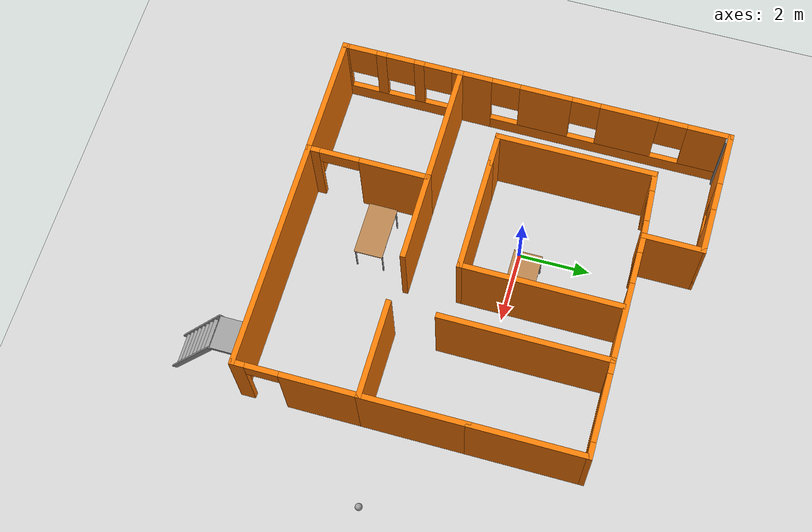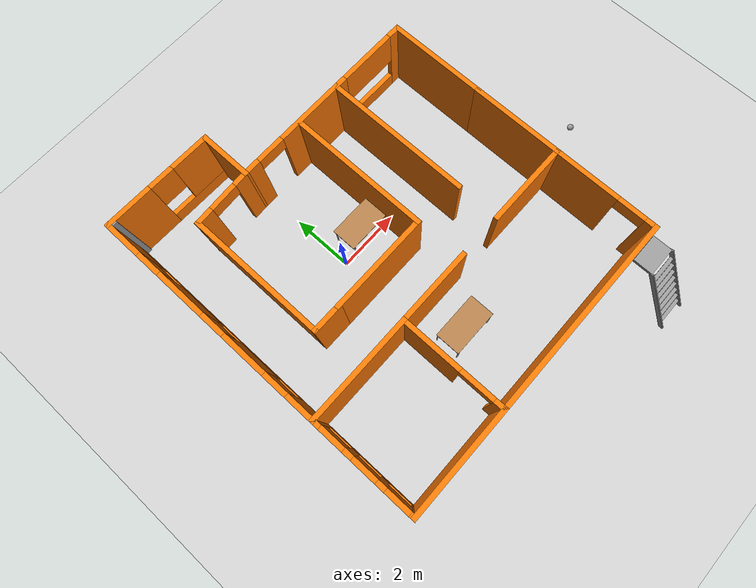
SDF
<sdf version="1.5">
 <world name="default">
  <plugin name="welcome" filename="libwelcome.so"/>
  <light name="sun" type="directional">
   <pose>0 0 10 0 -0 0</pose>
   <diffuse>0.8 0.8 0.8 1</diffuse>
   <specular>0.2 0.2 0.2 1</specular>
   <attenuation>
    <range>1000</range>
    <constant>0.9</constant>
    <linear>0.01</linear>
    <quadratic>0.001</quadratic>
   </attenuation>
   <direction>-0.5 0.1 -0.9</direction>
   <spot><inner_angle>0</inner_angle><outer_angle>0</outer_angle><falloff>0</falloff></spot>
  </light>
  <model name="ground_plane">
   <static>1</static>
   <link name="link">
    <collision name="collision">
     <geometry><plane><normal>0 0 1</normal><size>100 100</size></plane></geometry>
     <surface>
      <contact><collide_bitmask>65535</collide_bitmask></contact>
      <friction><ode><mu>100</mu><mu2>50</mu2></ode></friction>
     </surface>
    </collision>
    <visual name="visual">
     <cast_shadows>0</cast_shadows>
     <geometry><plane><normal>0 0 1</normal><size>100 100</size></plane></geometry>
     <material>
      <script><uri>file://media/materials/scripts/gazebo.material</uri><name>Gazebo/Grey</name></script>
     </material>
    </visual>
   </link>
  </model>
  <gravity>0 0 -9.8</gravity>
  <magnetic_field>6e-06 2.3e-05 -4.2e-05</magnetic_field>
  <atmosphere type="adiabatic"/>
  <physics type="ode">
   <max_step_size>0.001</max_step_size>
   <real_time_factor>1</real_time_factor>
   <real_time_update_rate>1000</real_time_update_rate>
  </physics>
  <scene><ambient>0.4 0.4 0.4 1</ambient><background>0.7 0.7 0.7 1</background><shadows>1</shadows></scene>
  <spherical_coordinates>
   <surface_model>EARTH_WGS84</surface_model>
   <latitude_deg>0</latitude_deg>
   <longitude_deg>0</longitude_deg>
   <elevation>0</elevation>
   <heading_deg>0</heading_deg>
  </spherical_coordinates>
  <model name="apbuilding">
   <pose>1.01179 -0.64167 0 0 -0 0</pose>
   <link name="Wall_26">
    <collision name="Wall_26_Collision">
     <geometry><box><size>3.5 0.15 2.5</size></box></geometry>
     <pose>0 0 1.25 0 -0 0</pose>
    </collision>
    <visual name="Wall_26_Visual">
     <pose>0 0 1.25 0 -0 0</pose>
     <geometry><box><size>3.5 0.15 2.5</size></box></geometry>
     <material>
      <script><uri>file://media/materials/scripts/gazebo.material</uri><name>Gazebo/Grey</name></script>
      <ambient>0.996078 0.47451 0.0196078 1</ambient>
     </material>
     <meta><layer>0</layer></meta>
    </visual>
    <pose>-3.17447 -5.47553 0 0 -0 0</pose>
   </link>
   <link name="Wall_27">
    <pose>-1.49947 -3.80053 0 0 -0 1.5708</pose>
    <visual name="Wall_27_Visual_0">
     <pose>-1.55093 0 1.25 0 -0 0</pose>
     <geometry><box><size>0.398136 0.15 2.5</size></box></geometry>
     <material>
      <script><uri>file://media/materials/scripts/gazebo.material</uri><name>Gazebo/Grey</name></script>
      <ambient>0.996078 0.47451 0.0196078 1</ambient>
     </material>
     <meta><layer>0</layer></meta>
    </visual>
    <collision name="Wall_27_Collision_0">
     <geometry><box><size>0.398136 0.15 2.5</size></box></geometry>
     <pose>-1.55093 0 1.25 0 -0 0</pose>
    </collision>
    <visual name="Wall_27_Visual_1">
     <pose>0.754868 0 1.25 0 -0 0</pose>
     <geometry><box><size>1.99026 0.15 2.5</size></box></geometry>
     <material>
      <script><uri>file://media/materials/scripts/gazebo.material</uri><name>Gazebo/Grey</name></script>
      <ambient>0.996078 0.47451 0.0196078 1</ambient>
     </material>
     <meta><layer>0</layer></meta>
    </visual>
    <collision name="Wall_27_Collision_1">
     <geometry><box><size>1.99026 0.15 2.5</size></box></geometry>
     <pose>0.754868 0 1.25 0 -0 0</pose>
    </collision>
    <visual name="Wall_27_Visual_2">
     <pose>-0.796064 0 2.25 0 -0 0</pose>
     <geometry><box><size>1.1116 0.15 0.5</size></box></geometry>
     <material>
      <script><uri>file://media/materials/scripts/gazebo.material</uri><name>Gazebo/Grey</name></script>
      <ambient>0.996078 0.47451 0.0196078 1</ambient>
     </material>
     <meta><layer>0</layer></meta>
    </visual>
    <collision name="Wall_27_Collision_2">
     <geometry><box><size>1.1116 0.15 0.5</size></box></geometry>
     <pose>-0.796064 0 2.25 0 -0 0</pose>
    </collision>
   </link>
   <link name="Wall_28">
    <collision name="Wall_28_Collision">
     <geometry><box><size>3.5 0.15 2.5</size></box></geometry>
     <pose>0 0 1.25 0 -0 0</pose>
    </collision>
    <visual name="Wall_28_Visual">
     <pose>0 0 1.25 0 -0 0</pose>
     <geometry><box><size>3.5 0.15 2.5</size></box></geometry>
     <material>
      <script><uri>file://media/materials/scripts/gazebo.material</uri><name>Gazebo/Grey</name></script>
      <ambient>0.996078 0.47451 0.0196078 1</ambient>
     </material>
     <meta><layer>0</layer></meta>
    </visual>
    <pose>-3.17447 -2.12553 0 0 -0 3.14159</pose>
   </link>
   <link name="Wall_29">
    <pose>-4.84947 -3.80053 0 0 -0 -1.5708</pose>
    <visual name="Wall_29_Visual_0">
     <pose>-1.59167 0 1.25 0 -0 0</pose>
     <geometry><box><size>0.316661 0.15 2.5</size></box></geometry>
     <material>
      <script><uri>file://media/materials/scripts/gazebo.material</uri><name>Gazebo/Grey</name></script>
      <ambient>0.996078 0.47451 0.0196078 1</ambient>
     </material>
     <meta><layer>0</layer></meta>
    </visual>
    <collision name="Wall_29_Collision_0">
     <geometry><box><size>0.316661 0.15 2.5</size></box></geometry>
     <pose>-1.59167 0 1.25 0 -0 0</pose>
    </collision>
    <visual name="Wall_29_Visual_1">
     <pose>0.158331 0 0.25 0 -0 0</pose>
     <geometry><box><size>3.18334 0.15 0.5</size></box></geometry>
     <material>
      <script><uri>file://media/materials/scripts/gazebo.material</uri><name>Gazebo/Grey</name></script>
      <ambient>0.996078 0.47451 0.0196078 1</ambient>
     </material>
     <meta><layer>0</layer></meta>
    </visual>
    <collision name="Wall_29_Collision_1">
     <geometry><box><size>3.18334 0.15 0.5</size></box></geometry>
     <pose>0.158331 0 0.25 0 -0 0</pose>
    </collision>
    <visual name="Wall_29_Visual_2">
     <pose>-0.488034 0 1.5 0 -0 0</pose>
     <geometry><box><size>0.290608 0.15 2</size></box></geometry>
     <material>
      <script><uri>file://media/materials/scripts/gazebo.material</uri><name>Gazebo/Grey</name></script>
      <ambient>0.996078 0.47451 0.0196078 1</ambient>
     </material>
     <meta><layer>0</layer></meta>
    </visual>
    <collision name="Wall_29_Collision_2">
     <geometry><box><size>0.290608 0.15 2</size></box></geometry>
     <pose>-0.488034 0 1.5 0 -0 0</pose>
    </collision>
    <visual name="Wall_29_Visual_3">
     <pose>0.602574 0 1.5 0 -0 0</pose>
     <geometry><box><size>0.290609 0.15 2</size></box></geometry>
     <material>
      <script><uri>file://media/materials/scripts/gazebo.material</uri><name>Gazebo/Grey</name></script>
      <ambient>0.996078 0.47451 0.0196078 1</ambient>
     </material>
     <meta><layer>0</layer></meta>
    </visual>
    <collision name="Wall_29_Collision_3">
     <geometry><box><size>0.290609 0.15 2</size></box></geometry>
     <pose>0.602574 0 1.5 0 -0 0</pose>
    </collision>
    <visual name="Wall_29_Visual_4">
     <pose>1.64894 0 1.5 0 -0 0</pose>
     <geometry><box><size>0.202122 0.15 2</size></box></geometry>
     <material>
      <script><uri>file://media/materials/scripts/gazebo.material</uri><name>Gazebo/Grey</name></script>
      <ambient>0.996078 0.47451 0.0196078 1</ambient>
     </material>
     <meta><layer>0</layer></meta>
    </visual>
    <collision name="Wall_29_Collision_4">
     <geometry><box><size>0.202122 0.15 2</size></box></geometry>
     <pose>1.64894 0 1.5 0 -0 0</pose>
    </collision>
    <visual name="Wall_29_Visual_5">
     <pose>-1.03334 0 1.9 0 -0 0</pose>
     <geometry><box><size>0.8 0.15 1.2</size></box></geometry>
     <material>
      <script><uri>file://media/materials/scripts/gazebo.material</uri><name>Gazebo/Grey</name></script>
      <ambient>0.996078 0.47451 0.0196078 1</ambient>
     </material>
     <meta><layer>0</layer></meta>
    </visual>
    <collision name="Wall_29_Collision_5">
     <geometry><box><size>0.8 0.15 1.2</size></box></geometry>
     <pose>-1.03334 0 1.9 0 -0 0</pose>
    </collision>
    <visual name="Wall_29_Visual_6">
     <pose>0.05727 0 1.9 0 -0 0</pose>
     <geometry><box><size>0.8 0.15 1.2</size></box></geometry>
     <material>
      <script><uri>file://media/materials/scripts/gazebo.material</uri><name>Gazebo/Grey</name></script>
      <ambient>0.996078 0.47451 0.0196078 1</ambient>
     </material>
     <meta><layer>0</layer></meta>
    </visual>
    <collision name="Wall_29_Collision_6">
     <geometry><box><size>0.8 0.15 1.2</size></box></geometry>
     <pose>0.05727 0 1.9 0 -0 0</pose>
    </collision>
    <visual name="Wall_29_Visual_7">
     <pose>1.14788 0 1.9 0 -0 0</pose>
     <geometry><box><size>0.8 0.15 1.2</size></box></geometry>
     <material>
      <script><uri>file://media/materials/scripts/gazebo.material</uri><name>Gazebo/Grey</name></script>
      <ambient>0.996078 0.47451 0.0196078 1</ambient>
     </material>
     <meta><layer>0</layer></meta>
    </visual>
    <collision name="Wall_29_Collision_7">
     <geometry><box><size>0.8 0.15 1.2</size></box></geometry>
     <pose>1.14788 0 1.9 0 -0 0</pose>
    </collision>
   </link>
   <link name="Wall_31">
    <collision name="Wall_31_Collision">
     <geometry><box><size>6.5 0.15 2.5</size></box></geometry>
     <pose>0 0 1.25 0 -0 0</pose>
    </collision>
    <visual name="Wall_31_Visual">
     <pose>0 0 1.25 0 -0 0</pose>
     <geometry><box><size>6.5 0.15 2.5</size></box></geometry>
     <material>
      <script><uri>file://media/materials/scripts/gazebo.material</uri><name>Gazebo/Grey</name></script>
      <ambient>0.996078 0.47451 0.0196078 1</ambient>
     </material>
     <meta><layer>0</layer></meta>
    </visual>
    <pose>1.67553 -5.47553 0 0 -0 0</pose>
   </link>
   <link name="Wall_32">
    <pose>4.85053 -3.80053 0 0 -0 1.5708</pose>
    <visual name="Wall_32_Visual_0">
     <pose>-1.54576 0 1.25 0 -0 0</pose>
     <geometry><box><size>0.408486 0.15 2.5</size></box></geometry>
     <material>
      <script><uri>file://media/materials/scripts/gazebo.material</uri><name>Gazebo/Grey</name></script>
      <ambient>0.996078 0.47451 0.0196078 1</ambient>
     </material>
     <meta><layer>0</layer></meta>
    </visual>
    <collision name="Wall_32_Collision_0">
     <geometry><box><size>0.408486 0.15 2.5</size></box></geometry>
     <pose>-1.54576 0 1.25 0 -0 0</pose>
    </collision>
    <visual name="Wall_32_Visual_1">
     <pose>0.654243 0 1.25 0 -0 0</pose>
     <geometry><box><size>2.19151 0.15 2.5</size></box></geometry>
     <material>
      <script><uri>file://media/materials/scripts/gazebo.material</uri><name>Gazebo/Grey</name></script>
      <ambient>0.996078 0.47451 0.0196078 1</ambient>
     </material>
     <meta><layer>0</layer></meta>
    </visual>
    <collision name="Wall_32_Collision_1">
     <geometry><box><size>2.19151 0.15 2.5</size></box></geometry>
     <pose>0.654243 0 1.25 0 -0 0</pose>
    </collision>
    <visual name="Wall_32_Visual_2">
     <pose>-0.891514 0 2.25 0 -0 0</pose>
     <geometry><box><size>0.9 0.15 0.5</size></box></geometry>
     <material>
      <script><uri>file://media/materials/scripts/gazebo.material</uri><name>Gazebo/Grey</name></script>
      <ambient>0.996078 0.47451 0.0196078 1</ambient>
     </material>
     <meta><layer>0</layer></meta>
    </visual>
    <collision name="Wall_32_Collision_2">
     <geometry><box><size>0.9 0.15 0.5</size></box></geometry>
     <pose>-0.891514 0 2.25 0 -0 0</pose>
    </collision>
   </link>
   <link name="Wall_33">
    <collision name="Wall_33_Collision">
     <geometry><box><size>2.75 0.15 2.5</size></box></geometry>
     <pose>0 0 1.25 0 -0 0</pose>
    </collision>
    <visual name="Wall_33_Visual">
     <pose>0 0 1.25 0 -0 0</pose>
     <geometry><box><size>2.75 0.15 2.5</size></box></geometry>
     <material>
      <script><uri>file://media/materials/scripts/gazebo.material</uri><name>Gazebo/Grey</name></script>
      <ambient>0.996078 0.47451 0.0196078 1</ambient>
     </material>
     <meta><layer>0</layer></meta>
    </visual>
    <pose>3.55053 -2.12553 0 0 -0 3.14159</pose>
   </link>
   <link name="Wall_35">
    <collision name="Wall_35_Collision">
     <geometry><box><size>2.5 0.15 2.5</size></box></geometry>
     <pose>0 0 1.25 0 -0 0</pose>
    </collision>
    <visual name="Wall_35_Visual">
     <pose>0 0 1.25 0 -0 0</pose>
     <geometry><box><size>2.5 0.15 2.5</size></box></geometry>
     <material>
      <script><uri>file://media/materials/scripts/gazebo.material</uri><name>Gazebo/Grey</name></script>
      <ambient>0.996078 0.47451 0.0196078 1</ambient>
     </material>
     <meta><layer>0</layer></meta>
    </visual>
    <pose>-0.324468 -2.12553 0 0 -0 0</pose>
   </link>
   <link name="Wall_37">
    <collision name="Wall_37_Collision">
     <geometry><box><size>3 0.15 2.5</size></box></geometry>
     <pose>0 0 1.25 0 -0 0</pose>
    </collision>
    <visual name="Wall_37_Visual">
     <pose>0 0 1.25 0 -0 0</pose>
     <geometry><box><size>3 0.15 2.5</size></box></geometry>
     <material>
      <script><uri>file://media/materials/scripts/gazebo.material</uri><name>Gazebo/Grey</name></script>
      <ambient>0.996078 0.47451 0.0196078 1</ambient>
     </material>
     <meta><layer>0</layer></meta>
    </visual>
    <pose>4.85053 -0.700532 0 0 -0 1.5708</pose>
   </link>
   <link name="Wall_39">
    <collision name="Wall_39_Collision">
     <geometry><box><size>3.25 0.15 2.5</size></box></geometry>
     <pose>0 0 1.25 0 -0 0</pose>
    </collision>
    <visual name="Wall_39_Visual">
     <pose>0 0 1.25 0 -0 0</pose>
     <geometry><box><size>3.25 0.15 2.5</size></box></geometry>
     <material>
      <script><uri>file://media/materials/scripts/gazebo.material</uri><name>Gazebo/Grey</name></script>
      <ambient>0.996078 0.47451 0.0196078 1</ambient>
     </material>
     <meta><layer>0</layer></meta>
    </visual>
    <pose>4.85053 2.27447 0 0 -0 1.5708</pose>
   </link>
   <link name="Wall_40">
    <pose>3.55053 3.82447 0 0 -0 3.14159</pose>
    <visual name="Wall_40_Visual_0">
     <pose>-1.14595 0 1.25 0 -0 0</pose>
     <geometry><box><size>0.458097 0.15 2.5</size></box></geometry>
     <material>
      <script><uri>file://media/materials/scripts/gazebo.material</uri><name>Gazebo/Grey</name></script>
      <ambient>0.996078 0.47451 0.0196078 1</ambient>
     </material>
     <meta><layer>0</layer></meta>
    </visual>
    <collision name="Wall_40_Collision_0">
     <geometry><box><size>0.458097 0.15 2.5</size></box></geometry>
     <pose>-1.14595 0 1.25 0 -0 0</pose>
    </collision>
    <visual name="Wall_40_Visual_1">
     <pose>0.229048 0 0.25 0 -0 0</pose>
     <geometry><box><size>2.2919 0.15 0.5</size></box></geometry>
     <material>
      <script><uri>file://media/materials/scripts/gazebo.material</uri><name>Gazebo/Grey</name></script>
      <ambient>0.996078 0.47451 0.0196078 1</ambient>
     </material>
     <meta><layer>0</layer></meta>
    </visual>
    <collision name="Wall_40_Collision_1">
     <geometry><box><size>2.2919 0.15 0.5</size></box></geometry>
     <pose>0.229048 0 0.25 0 -0 0</pose>
    </collision>
    <visual name="Wall_40_Visual_2">
     <pose>1.15507 0 1.5 0 -0 0</pose>
     <geometry><box><size>0.439864 0.15 2</size></box></geometry>
     <material>
      <script><uri>file://media/materials/scripts/gazebo.material</uri><name>Gazebo/Grey</name></script>
      <ambient>0.996078 0.47451 0.0196078 1</ambient>
     </material>
     <meta><layer>0</layer></meta>
    </visual>
    <collision name="Wall_40_Collision_2">
     <geometry><box><size>0.439864 0.15 2</size></box></geometry>
     <pose>1.15507 0 1.5 0 -0 0</pose>
    </collision>
    <visual name="Wall_40_Visual_3">
     <pose>0.009116 0 1.9 0 -0 0</pose>
     <geometry><box><size>1.85204 0.15 1.2</size></box></geometry>
     <material>
      <script><uri>file://media/materials/scripts/gazebo.material</uri><name>Gazebo/Grey</name></script>
      <ambient>0.996078 0.47451 0.0196078 1</ambient>
     </material>
     <meta><layer>0</layer></meta>
    </visual>
    <collision name="Wall_40_Collision_3">
     <geometry><box><size>1.85204 0.15 1.2</size></box></geometry>
     <pose>0.009116 0 1.9 0 -0 0</pose>
    </collision>
   </link>
   <link name="Wall_41">
    <collision name="Wall_41_Collision">
     <geometry><box><size>4.75 0.15 2.5</size></box></geometry>
     <pose>0 0 1.25 0 -0 0</pose>
    </collision>
    <visual name="Wall_41_Visual">
     <pose>0 0 1.25 0 -0 0</pose>
     <geometry><box><size>4.75 0.15 2.5</size></box></geometry>
     <material>
      <script><uri>file://media/materials/scripts/gazebo.material</uri><name>Gazebo/Grey</name></script>
      <ambient>0.996078 0.47451 0.0196078 1</ambient>
     </material>
     <meta><layer>0</layer></meta>
    </visual>
    <pose>2.25053 1.52447 0 0 -0 -1.5708</pose>
   </link>
   <link name="Wall_43">
    <pose>0.450532 3.82447 0 0 -0 3.14159</pose>
    <visual name="Wall_43_Visual_0">
     <pose>-0.739437 0 1.25 0 -0 0</pose>
     <geometry><box><size>2.27113 0.15 2.5</size></box></geometry>
     <material>
      <script><uri>file://media/materials/scripts/gazebo.material</uri><name>Gazebo/Grey</name></script>
      <ambient>0.996078 0.47451 0.0196078 1</ambient>
     </material>
     <meta><layer>0</layer></meta>
    </visual>
    <collision name="Wall_43_Collision_0">
     <geometry><box><size>2.27113 0.15 2.5</size></box></geometry>
     <pose>-0.739437 0 1.25 0 -0 0</pose>
    </collision>
    <visual name="Wall_43_Visual_1">
     <pose>1.58556 0 1.25 0 -0 0</pose>
     <geometry><box><size>0.578874 0.15 2.5</size></box></geometry>
     <material>
      <script><uri>file://media/materials/scripts/gazebo.material</uri><name>Gazebo/Grey</name></script>
      <ambient>0.996078 0.47451 0.0196078 1</ambient>
     </material>
     <meta><layer>0</layer></meta>
    </visual>
    <collision name="Wall_43_Collision_1">
     <geometry><box><size>0.578874 0.15 2.5</size></box></geometry>
     <pose>1.58556 0 1.25 0 -0 0</pose>
    </collision>
    <visual name="Wall_43_Visual_2">
     <pose>0.846126 0 2.25 0 -0 0</pose>
     <geometry><box><size>0.9 0.15 0.5</size></box></geometry>
     <material>
      <script><uri>file://media/materials/scripts/gazebo.material</uri><name>Gazebo/Grey</name></script>
      <ambient>0.996078 0.47451 0.0196078 1</ambient>
     </material>
     <meta><layer>0</layer></meta>
    </visual>
    <collision name="Wall_43_Collision_2">
     <geometry><box><size>0.9 0.15 0.5</size></box></geometry>
     <pose>0.846126 0 2.25 0 -0 0</pose>
    </collision>
   </link>
   <link name="Wall_45">
    <collision name="Wall_45_Collision">
     <geometry><box><size>4.5 0.15 2.5</size></box></geometry>
     <pose>0 0 1.25 0 -0 0</pose>
    </collision>
    <visual name="Wall_45_Visual">
     <pose>0 0 1.25 0 -0 0</pose>
     <geometry><box><size>4.5 0.15 2.5</size></box></geometry>
     <material>
      <script><uri>file://media/materials/scripts/gazebo.material</uri><name>Gazebo/Grey</name></script>
      <ambient>0.996078 0.47451 0.0196078 1</ambient>
     </material>
     <meta><layer>0</layer></meta>
    </visual>
    <pose>0.744194 1.55083 0 0 -0 -1.5708</pose>
   </link>
   <link name="Wall_47">
    <collision name="Wall_47_Collision">
     <geometry><box><size>1.75 0.15 2.5</size></box></geometry>
     <pose>0 0 1.25 0 -0 0</pose>
    </collision>
    <visual name="Wall_47_Visual">
     <pose>0 0 1.25 0 -0 0</pose>
     <geometry><box><size>1.75 0.15 2.5</size></box></geometry>
     <material>
      <script><uri>file://media/materials/scripts/gazebo.material</uri><name>Gazebo/Grey</name></script>
      <ambient>0.996078 0.47451 0.0196078 1</ambient>
     </material>
     <meta><layer>0</layer></meta>
    </visual>
    <pose>-1.34947 4.62447 0 0 -0 1.5708</pose>
   </link>
   <link name="Wall_49">
    <collision name="Wall_49_Collision">
     <geometry><box><size>0.15 0.15 2.5</size></box></geometry>
     <pose>0 0 1.25 0 -0 0</pose>
    </collision>
    <visual name="Wall_49_Visual">
     <pose>0 0 1.25 0 -0 0</pose>
     <geometry><box><size>0.15 0.15 2.5</size></box></geometry>
     <material>
      <script><uri>file://media/materials/scripts/gazebo.material</uri><name>Gazebo/Grey</name></script>
      <ambient>1 1 1 1</ambient>
     </material>
     <meta><layer>0</layer></meta>
    </visual>
    <pose>-4.69947 5.42447 0 0 -0 0</pose>
   </link>
   <link name="Wall_53">
    <pose>-4.84947 1.67447 0 0 -0 1.5708</pose>
    <visual name="Wall_53_Visual_0">
     <pose>-3.38333 0 1.25 0 -0 0</pose>
     <geometry><box><size>0.983333 0.15 2.5</size></box></geometry>
     <material>
      <script><uri>file://media/materials/scripts/gazebo.material</uri><name>Gazebo/Grey</name></script>
      <ambient>0.996078 0.47451 0.0196078 1</ambient>
     </material>
     <meta><layer>0</layer></meta>
    </visual>
    <collision name="Wall_53_Collision_0">
     <geometry><box><size>0.983333 0.15 2.5</size></box></geometry>
     <pose>-3.38333 0 1.25 0 -0 0</pose>
    </collision>
    <visual name="Wall_53_Visual_1">
     <pose>0.491666 0 0.25 0 -0 0</pose>
     <geometry><box><size>6.76667 0.15 0.5</size></box></geometry>
     <material>
      <script><uri>file://media/materials/scripts/gazebo.material</uri><name>Gazebo/Grey</name></script>
      <ambient>0.996078 0.47451 0.0196078 1</ambient>
     </material>
     <meta><layer>0</layer></meta>
    </visual>
    <collision name="Wall_53_Collision_1">
     <geometry><box><size>6.76667 0.15 0.5</size></box></geometry>
     <pose>0.491666 0 0.25 0 -0 0</pose>
    </collision>
    <visual name="Wall_53_Visual_2">
     <pose>-1.35891 0 1.5 0 -0 0</pose>
     <geometry><box><size>1.46551 0.15 2</size></box></geometry>
     <material>
      <script><uri>file://media/materials/scripts/gazebo.material</uri><name>Gazebo/Grey</name></script>
      <ambient>0.996078 0.47451 0.0196078 1</ambient>
     </material>
     <meta><layer>0</layer></meta>
    </visual>
    <collision name="Wall_53_Collision_2">
     <geometry><box><size>1.46551 0.15 2</size></box></geometry>
     <pose>-1.35891 0 1.5 0 -0 0</pose>
    </collision>
    <visual name="Wall_53_Visual_3">
     <pose>0.987513 0 1.5 0 -0 0</pose>
     <geometry><box><size>1.62733 0.15 2</size></box></geometry>
     <material>
      <script><uri>file://media/materials/scripts/gazebo.material</uri><name>Gazebo/Grey</name></script>
      <ambient>0.996078 0.47451 0.0196078 1</ambient>
     </material>
     <meta><layer>0</layer></meta>
    </visual>
    <collision name="Wall_53_Collision_3">
     <geometry><box><size>1.62733 0.15 2</size></box></geometry>
     <pose>0.987513 0 1.5 0 -0 0</pose>
    </collision>
    <visual name="Wall_53_Visual_4">
     <pose>3.23809 0 1.5 0 -0 0</pose>
     <geometry><box><size>1.27382 0.15 2</size></box></geometry>
     <material>
      <script><uri>file://media/materials/scripts/gazebo.material</uri><name>Gazebo/Grey</name></script>
      <ambient>0.996078 0.47451 0.0196078 1</ambient>
     </material>
     <meta><layer>0</layer></meta>
    </visual>
    <collision name="Wall_53_Collision_4">
     <geometry><box><size>1.27382 0.15 2</size></box></geometry>
     <pose>3.23809 0 1.5 0 -0 0</pose>
    </collision>
    <visual name="Wall_53_Visual_5">
     <pose>-2.49167 0 1.9 0 -0 0</pose>
     <geometry><box><size>0.8 0.15 1.2</size></box></geometry>
     <material>
      <script><uri>file://media/materials/scripts/gazebo.material</uri><name>Gazebo/Grey</name></script>
      <ambient>0.996078 0.47451 0.0196078 1</ambient>
     </material>
     <meta><layer>0</layer></meta>
    </visual>
    <collision name="Wall_53_Collision_5">
     <geometry><box><size>0.8 0.15 1.2</size></box></geometry>
     <pose>-2.49167 0 1.9 0 -0 0</pose>
    </collision>
    <visual name="Wall_53_Visual_6">
     <pose>-0.226155 0 1.9 0 -0 0</pose>
     <geometry><box><size>0.8 0.15 1.2</size></box></geometry>
     <material>
      <script><uri>file://media/materials/scripts/gazebo.material</uri><name>Gazebo/Grey</name></script>
      <ambient>0.996078 0.47451 0.0196078 1</ambient>
     </material>
     <meta><layer>0</layer></meta>
    </visual>
    <collision name="Wall_53_Collision_6">
     <geometry><box><size>0.8 0.15 1.2</size></box></geometry>
     <pose>-0.226155 0 1.9 0 -0 0</pose>
    </collision>
    <visual name="Wall_53_Visual_7">
     <pose>2.20118 0 1.9 0 -0 0</pose>
     <geometry><box><size>0.8 0.15 1.2</size></box></geometry>
     <material>
      <script><uri>file://media/materials/scripts/gazebo.material</uri><name>Gazebo/Grey</name></script>
      <ambient>0.996078 0.47451 0.0196078 1</ambient>
     </material>
     <meta><layer>0</layer></meta>
    </visual>
    <collision name="Wall_53_Collision_7">
     <geometry><box><size>0.8 0.15 1.2</size></box></geometry>
     <pose>2.20118 0 1.9 0 -0 0</pose>
    </collision>
   </link>
   <link name="Wall_58">
    <collision name="Wall_58_Collision">
     <geometry><box><size>3.25 0.15 2.5</size></box></geometry>
     <pose>0 0 1.25 0 -0 0</pose>
    </collision>
    <visual name="Wall_58_Visual">
     <pose>0 0 1.25 0 -0 0</pose>
     <geometry><box><size>3.25 0.15 2.5</size></box></geometry>
     <material>
      <script><uri>file://media/materials/scripts/gazebo.material</uri><name>Gazebo/Grey</name></script>
      <ambient>0.996078 0.47451 0.0196078 1</ambient>
     </material>
     <meta><layer>0</layer></meta>
    </visual>
    <pose>-0.805806 -0.624173 0 0 -0 3.14159</pose>
   </link>
   <link name="Wall_61">
    <collision name="Wall_61_Collision">
     <geometry><box><size>1 0.15 2.5</size></box></geometry>
     <pose>0 0 1.25 0 -0 0</pose>
    </collision>
    <visual name="Wall_61_Visual">
     <pose>0 0 1.25 0 -0 0</pose>
     <geometry><box><size>1 0.15 2.5</size></box></geometry>
     <material>
      <script><uri>file://media/materials/scripts/gazebo.material</uri><name>Gazebo/Grey</name></script>
      <ambient>0.996078 0.47451 0.0196078 1</ambient>
     </material>
     <meta><layer>0</layer></meta>
    </visual>
    <pose>-2.78081 -0.624173 0 0 -0 3.14159</pose>
   </link>
   <link name="Wall_62">
    <collision name="Wall_62_Collision">
     <geometry><box><size>4.5 0.15 2.5</size></box></geometry>
     <pose>0 0 1.25 0 -0 0</pose>
    </collision>
    <visual name="Wall_62_Visual">
     <pose>0 0 1.25 0 -0 0</pose>
     <geometry><box><size>4.5 0.15 2.5</size></box></geometry>
     <material>
      <script><uri>file://media/materials/scripts/gazebo.material</uri><name>Gazebo/Grey</name></script>
      <ambient>0.996078 0.47451 0.0196078 1</ambient>
     </material>
     <meta><layer>0</layer></meta>
    </visual>
    <pose>-3.20581 1.55083 0 0 -0 1.5708</pose>
   </link>
   <link name="Wall_63">
    <pose>-2.27764 3.77515 0 0 -0 0.053088</pose>
    <visual name="Wall_63_Visual_0">
     <pose>-0.709126 0 1.25 0 -0 0</pose>
     <geometry><box><size>0.590704 0.15 2.5</size></box></geometry>
     <material>
      <script><uri>file://media/materials/scripts/gazebo.material</uri><name>Gazebo/Grey</name></script>
      <ambient>0.996078 0.47451 0.0196078 1</ambient>
     </material>
     <meta><layer>0</layer></meta>
    </visual>
    <collision name="Wall_63_Collision_0">
     <geometry><box><size>0.590704 0.15 2.5</size></box></geometry>
     <pose>-0.709126 0 1.25 0 -0 0</pose>
    </collision>
    <visual name="Wall_63_Visual_1">
     <pose>0.745352 0 1.25 0 -0 0</pose>
     <geometry><box><size>0.518252 0.15 2.5</size></box></geometry>
     <material>
      <script><uri>file://media/materials/scripts/gazebo.material</uri><name>Gazebo/Grey</name></script>
      <ambient>0.996078 0.47451 0.0196078 1</ambient>
     </material>
     <meta><layer>0</layer></meta>
    </visual>
    <collision name="Wall_63_Collision_1">
     <geometry><box><size>0.518252 0.15 2.5</size></box></geometry>
     <pose>0.745352 0 1.25 0 -0 0</pose>
    </collision>
    <visual name="Wall_63_Visual_2">
     <pose>0.036226 0 2.25 0 -0 0</pose>
     <geometry><box><size>0.9 0.15 0.5</size></box></geometry>
     <material>
      <script><uri>file://media/materials/scripts/gazebo.material</uri><name>Gazebo/Grey</name></script>
      <ambient>0.996078 0.47451 0.0196078 1</ambient>
     </material>
     <meta><layer>0</layer></meta>
    </visual>
    <collision name="Wall_63_Collision_2">
     <geometry><box><size>0.9 0.15 0.5</size></box></geometry>
     <pose>0.036226 0 2.25 0 -0 0</pose>
    </collision>
   </link>
   <link name="Wall_67">
    <pose>-3.09947 5.44947 0 0 -0 -0.014285</pose>
    <visual name="Wall_67_Visual_0">
     <pose>-1.05518 0 1.25 0 -0 0</pose>
     <geometry><box><size>1.53999 0.15 2.5</size></box></geometry>
     <material>
      <script><uri>file://media/materials/scripts/gazebo.material</uri><name>Gazebo/Grey</name></script>
      <ambient>0.996078 0.47451 0.0196078 1</ambient>
     </material>
     <meta><layer>0</layer></meta>
    </visual>
    <collision name="Wall_67_Collision_0">
     <geometry><box><size>1.53999 0.15 2.5</size></box></geometry>
     <pose>-1.05518 0 1.25 0 -0 0</pose>
    </collision>
    <visual name="Wall_67_Visual_1">
     <pose>0.769995 0 0.25 0 -0 0</pose>
     <geometry><box><size>2.11037 0.15 0.5</size></box></geometry>
     <material>
      <script><uri>file://media/materials/scripts/gazebo.material</uri><name>Gazebo/Grey</name></script>
      <ambient>0.996078 0.47451 0.0196078 1</ambient>
     </material>
     <meta><layer>0</layer></meta>
    </visual>
    <collision name="Wall_67_Collision_1">
     <geometry><box><size>2.11037 0.15 0.5</size></box></geometry>
     <pose>0.769995 0 0.25 0 -0 0</pose>
    </collision>
    <visual name="Wall_67_Visual_2">
     <pose>1.16999 0 1.5 0 -0 0</pose>
     <geometry><box><size>1.31037 0.15 2</size></box></geometry>
     <material>
      <script><uri>file://media/materials/scripts/gazebo.material</uri><name>Gazebo/Grey</name></script>
      <ambient>0.996078 0.47451 0.0196078 1</ambient>
     </material>
     <meta><layer>0</layer></meta>
    </visual>
    <collision name="Wall_67_Collision_2">
     <geometry><box><size>1.31037 0.15 2</size></box></geometry>
     <pose>1.16999 0 1.5 0 -0 0</pose>
    </collision>
    <visual name="Wall_67_Visual_3">
     <pose>0.114811 0 1.9 0 -0 0</pose>
     <geometry><box><size>0.8 0.15 1.2</size></box></geometry>
     <material>
      <script><uri>file://media/materials/scripts/gazebo.material</uri><name>Gazebo/Grey</name></script>
      <ambient>0.996078 0.47451 0.0196078 1</ambient>
     </material>
     <meta><layer>0</layer></meta>
    </visual>
    <collision name="Wall_67_Collision_3">
     <geometry><box><size>0.8 0.15 1.2</size></box></geometry>
     <pose>0.114811 0 1.9 0 -0 0</pose>
    </collision>
   </link>
   <static>1</static>
  </model>
  <model name="ladder_60deg_0rails">
   <static>1</static>
   <link name="step0">
    <pose>0 0.15396 0.266667 0 -0 0</pose>
    <inertial>
     <mass>9.75482</mass>
     <inertia>
      <ixx>0.00957124</ixx>
      <iyy>0.65963</iyy>
      <izz>0.666842</izz>
      <ixy>0</ixy>
      <ixz>0</ixz>
      <iyz>0</iyz>
     </inertia>
    </inertial>
    <collision name="collision"><geometry><box><size>0.9 0.1016 0.0381</size></box></geometry></collision>
    <visual name="visual">
     <geometry><box><size>0.9 0.1016 0.0381</size></box></geometry>
     <material>
      <script><uri>file://media/materials/scripts/gazebo.material</uri><name>Gazebo/Grey</name></script>
     </material>
    </visual>
   </link>
   <link name="step1">
    <pose>0 0.30792 0.533333 0 -0 0</pose>
    <inertial>
     <mass>9.75482</mass>
     <inertia>
      <ixx>0.00957124</ixx>
      <iyy>0.65963</iyy>
      <izz>0.666842</izz>
      <ixy>0</ixy>
      <ixz>0</ixz>
      <iyz>0</iyz>
     </inertia>
    </inertial>
    <collision name="collision"><geometry><box><size>0.9 0.1016 0.0381</size></box></geometry></collision>
    <visual name="visual">
     <geometry><box><size>0.9 0.1016 0.0381</size></box></geometry>
     <material>
      <script><uri>file://media/materials/scripts/gazebo.material</uri><name>Gazebo/Grey</name></script>
     </material>
    </visual>
   </link>
   <link name="step2">
    <pose>0 0.46188 0.8 0 -0 0</pose>
    <inertial>
     <mass>9.75482</mass>
     <inertia>
      <ixx>0.00957124</ixx>
      <iyy>0.65963</iyy>
      <izz>0.666842</izz>
      <ixy>0</ixy>
      <ixz>0</ixz>
      <iyz>0</iyz>
     </inertia>
    </inertial>
    <collision name="collision"><geometry><box><size>0.9 0.1016 0.0381</size></box></geometry></collision>
    <visual name="visual">
     <geometry><box><size>0.9 0.1016 0.0381</size></box></geometry>
     <material>
      <script><uri>file://media/materials/scripts/gazebo.material</uri><name>Gazebo/Grey</name></script>
     </material>
    </visual>
   </link>
   <link name="step3">
    <pose>0 0.61584 1.06667 0 -0 0</pose>
    <inertial>
     <mass>9.75482</mass>
     <inertia>
      <ixx>0.00957124</ixx>
      <iyy>0.65963</iyy>
      <izz>0.666842</izz>
      <ixy>0</ixy>
      <ixz>0</ixz>
      <iyz>0</iyz>
     </inertia>
    </inertial>
    <collision name="collision"><geometry><box><size>0.9 0.1016 0.0381</size></box></geometry></collision>
    <visual name="visual">
     <geometry><box><size>0.9 0.1016 0.0381</size></box></geometry>
     <material>
      <script><uri>file://media/materials/scripts/gazebo.material</uri><name>Gazebo/Grey</name></script>
     </material>
    </visual>
   </link>
   <link name="step4">
    <pose>0 0.7698 1.33333 0 -0 0</pose>
    <inertial>
     <mass>9.75482</mass>
     <inertia>
      <ixx>0.00957124</ixx>
      <iyy>0.65963</iyy>
      <izz>0.666842</izz>
      <ixy>0</ixy>
      <ixz>0</ixz>
      <iyz>0</iyz>
     </inertia>
    </inertial>
    <collision name="collision"><geometry><box><size>0.9 0.1016 0.0381</size></box></geometry></collision>
    <visual name="visual">
     <geometry><box><size>0.9 0.1016 0.0381</size></box></geometry>
     <material>
      <script><uri>file://media/materials/scripts/gazebo.material</uri><name>Gazebo/Grey</name></script>
     </material>
    </visual>
   </link>
   <link name="step5">
    <pose>0 0.92376 1.6 0 -0 0</pose>
    <inertial>
     <mass>9.75482</mass>
     <inertia>
      <ixx>0.00957124</ixx>
      <iyy>0.65963</iyy>
      <izz>0.666842</izz>
      <ixy>0</ixy>
      <ixz>0</ixz>
      <iyz>0</iyz>
     </inertia>
    </inertial>
    <collision name="collision"><geometry><box><size>0.9 0.1016 0.0381</size></box></geometry></collision>
    <visual name="visual">
     <geometry><box><size>0.9 0.1016 0.0381</size></box></geometry>
     <material>
      <script><uri>file://media/materials/scripts/gazebo.material</uri><name>Gazebo/Grey</name></script>
     </material>
    </visual>
   </link>
   <link name="step6">
    <pose>0 1.07772 1.86667 0 -0 0</pose>
    <inertial>
     <mass>9.75482</mass>
     <inertia>
      <ixx>0.00957124</ixx>
      <iyy>0.65963</iyy>
      <izz>0.666842</izz>
      <ixy>0</ixy>
      <ixz>0</ixz>
      <iyz>0</iyz>
     </inertia>
    </inertial>
    <collision name="collision"><geometry><box><size>0.9 0.1016 0.0381</size></box></geometry></collision>
    <visual name="visual">
     <geometry><box><size>0.9 0.1016 0.0381</size></box></geometry>
     <material>
      <script><uri>file://media/materials/scripts/gazebo.material</uri><name>Gazebo/Grey</name></script>
     </material>
    </visual>
   </link>
   <link name="step7">
    <pose>0 1.23168 2.13333 0 -0 0</pose>
    <inertial>
     <mass>9.75482</mass>
     <inertia>
      <ixx>0.00957124</ixx>
      <iyy>0.65963</iyy>
      <izz>0.666842</izz>
      <ixy>0</ixy>
      <ixz>0</ixz>
      <iyz>0</iyz>
     </inertia>
    </inertial>
    <collision name="collision"><geometry><box><size>0.9 0.1016 0.0381</size></box></geometry></collision>
    <visual name="visual">
     <geometry><box><size>0.9 0.1016 0.0381</size></box></geometry>
     <material>
      <script><uri>file://media/materials/scripts/gazebo.material</uri><name>Gazebo/Grey</name></script>
     </material>
    </visual>
   </link>
   <link name="landing">
    <pose>0 1.68564 2.4 0 -0 0</pose>
    <inertial>
     <mass>57.6072</mass>
     <inertia><ixx>1.73518</ixx><iyy>3.89545</iyy><izz>5.6167</izz><ixy>0</ixy><ixz>0</ixz><iyz>0</iyz></inertia>
    </inertial>
    <collision name="collision"><geometry><box><size>0.9 0.6 0.1016</size></box></geometry></collision>
    <visual name="visual">
     <geometry><box><size>0.9 0.6 0.1016</size></box></geometry>
     <material>
      <script><uri>file://media/materials/scripts/gazebo.material</uri><name>Gazebo/Grey</name></script>
     </material>
    </visual>
   </link>
   <link name="left_side_wall">
    <pose>-0.45 0.69282 1.2 1.0472 -0 0</pose>
    <collision name="collision"><geometry><box><size>0.0508 2.85128 0.13</size></box></geometry></collision>
    <visual name="visual">
     <geometry><box><size>0.0508 2.85128 0.13</size></box></geometry>
     <material>
      <script><uri>file://media/materials/scripts/gazebo.material</uri><name>Gazebo/Grey</name></script>
     </material>
    </visual>
   </link>
   <link name="right_side_wall">
    <pose>0.45 0.69282 1.2 1.0472 -0 0</pose>
    <collision name="collision"><geometry><box><size>0.0508 2.85128 0.13</size></box></geometry></collision>
    <visual name="visual">
     <geometry><box><size>0.0508 2.85128 0.13</size></box></geometry>
     <material>
      <script><uri>file://media/materials/scripts/gazebo.material</uri><name>Gazebo/Grey</name></script>
     </material>
    </visual>
   </link>
   <pose>5.19513 -8.1896 0 0 -0 0</pose>
  </model>
  <model name="table">
   <static>1</static>
   <link name="link">
    <collision name="surface">
     <pose>0 0 1 0 -0 0</pose>
     <geometry><box><size>1.5 0.8 0.03</size></box></geometry>
     <surface><friction><ode><mu>0.6</mu><mu2>0.6</mu2></ode></friction></surface>
    </collision>
    <visual name="visual1">
     <pose>0 0 1 0 -0 0</pose>
     <geometry><box><size>1.5 0.8 0.03</size></box></geometry>
     <material>
      <script><uri>file://media/materials/scripts/gazebo.material</uri><name>Gazebo/Wood</name></script>
     </material>
    </visual>
    <collision name="front_left_leg">
     <pose>0.68 0.38 0.5 0 -0 0</pose>
     <geometry><cylinder><radius>0.02</radius><length>1</length></cylinder></geometry>
    </collision>
    <visual name="front_left_leg">
     <pose>0.68 0.38 0.5 0 -0 0</pose>
     <geometry><cylinder><radius>0.02</radius><length>1</length></cylinder></geometry>
     <material>
      <script><uri>file://media/materials/scripts/gazebo.material</uri><name>Gazebo/Grey</name></script>
     </material>
    </visual>
    <collision name="front_right_leg">
     <pose>0.68 -0.38 0.5 0 -0 0</pose>
     <geometry><cylinder><radius>0.02</radius><length>1</length></cylinder></geometry>
    </collision>
    <visual name="front_right_leg">
     <pose>0.68 -0.38 0.5 0 -0 0</pose>
     <geometry><cylinder><radius>0.02</radius><length>1</length></cylinder></geometry>
     <material>
      <script><uri>file://media/materials/scripts/gazebo.material</uri><name>Gazebo/Grey</name></script>
     </material>
    </visual>
    <collision name="back_right_leg">
     <pose>-0.68 -0.38 0.5 0 -0 0</pose>
     <geometry><cylinder><radius>0.02</radius><length>1</length></cylinder></geometry>
    </collision>
    <visual name="back_right_leg">
     <pose>-0.68 -0.38 0.5 0 -0 0</pose>
     <geometry><cylinder><radius>0.02</radius><length>1</length></cylinder></geometry>
     <material>
      <script><uri>file://media/materials/scripts/gazebo.material</uri><name>Gazebo/Grey</name></script>
     </material>
    </visual>
    <collision name="back_left_leg">
     <pose>-0.68 0.38 0.5 0 -0 0</pose>
     <geometry><cylinder><radius>0.02</radius><length>1</length></cylinder></geometry>
    </collision>
    <visual name="back_left_leg">
     <pose>-0.68 0.38 0.5 0 -0 0</pose>
     <geometry><cylinder><radius>0.02</radius><length>1</length></cylinder></geometry>
     <material>
      <script><uri>file://media/materials/scripts/gazebo.material</uri><name>Gazebo/Grey</name></script>
     </material>
    </visual>
   </link>
   <pose>0.761324 -3.92128 0 0 -0 0</pose>
  </model>
  <model name="table_0">
   <static>1</static>
   <link name="link">
    <collision name="surface">
     <pose>0 0 1 0 -0 0</pose>
     <geometry><box><size>1.5 0.8 0.03</size></box></geometry>
     <surface><friction><ode><mu>0.6</mu><mu2>0.6</mu2></ode></friction></surface>
    </collision>
    <visual name="visual1">
     <pose>0 0 1 0 -0 0</pose>
     <geometry><box><size>1.5 0.8 0.03</size></box></geometry>
     <material>
      <script><uri>file://media/materials/scripts/gazebo.material</uri><name>Gazebo/Wood</name></script>
     </material>
    </visual>
    <collision name="front_left_leg">
     <pose>0.68 0.38 0.5 0 -0 0</pose>
     <geometry><cylinder><radius>0.02</radius><length>1</length></cylinder></geometry>
    </collision>
    <visual name="front_left_leg">
     <pose>0.68 0.38 0.5 0 -0 0</pose>
     <geometry><cylinder><radius>0.02</radius><length>1</length></cylinder></geometry>
     <material>
      <script><uri>file://media/materials/scripts/gazebo.material</uri><name>Gazebo/Grey</name></script>
     </material>
    </visual>
    <collision name="front_right_leg">
     <pose>0.68 -0.38 0.5 0 -0 0</pose>
     <geometry><cylinder><radius>0.02</radius><length>1</length></cylinder></geometry>
    </collision>
    <visual name="front_right_leg">
     <pose>0.68 -0.38 0.5 0 -0 0</pose>
     <geometry><cylinder><radius>0.02</radius><length>1</length></cylinder></geometry>
     <material>
      <script><uri>file://media/materials/scripts/gazebo.material</uri><name>Gazebo/Grey</name></script>
     </material>
    </visual>
    <collision name="back_right_leg">
     <pose>-0.68 -0.38 0.5 0 -0 0</pose>
     <geometry><cylinder><radius>0.02</radius><length>1</length></cylinder></geometry>
    </collision>
    <visual name="back_right_leg">
     <pose>-0.68 -0.38 0.5 0 -0 0</pose>
     <geometry><cylinder><radius>0.02</radius><length>1</length></cylinder></geometry>
     <material>
      <script><uri>file://media/materials/scripts/gazebo.material</uri><name>Gazebo/Grey</name></script>
     </material>
    </visual>
    <collision name="back_left_leg">
     <pose>-0.68 0.38 0.5 0 -0 0</pose>
     <geometry><cylinder><radius>0.02</radius><length>1</length></cylinder></geometry>
    </collision>
    <visual name="back_left_leg">
     <pose>-0.68 0.38 0.5 0 -0 0</pose>
     <geometry><cylinder><radius>0.02</radius><length>1</length></cylinder></geometry>
     <material>
      <script><uri>file://media/materials/scripts/gazebo.material</uri><name>Gazebo/Grey</name></script>
     </material>
    </visual>
   </link>
   <pose>1.05276 0.291504 0 0 -0 0</pose>
  </model>
  <model name="my_ball">
   <link name="link_0">
    <inertial>
     <mass>1</mass>
     <inertia><ixx>0.1</ixx><ixy>0</ixy><ixz>0</ixz><iyy>0.1</iyy><iyz>0</iyz><izz>0.1</izz></inertia>
     <pose>0 0 0.101 0 -0 0</pose>
    </inertial>
    <visual name="visual">
     <geometry><sphere><radius>0.1</radius></sphere></geometry>
     <material>
      <lighting>1</lighting>
      <script><uri>file://media/materials/scripts/gazebo.material</uri><name>Gazebo/Grey</name></script>
      <shader type="pixel"><normal_map>__default__</normal_map></shader>
      <ambient>1 1 1 1</ambient>
      <diffuse>1 1 1 1</diffuse>
      <specular>1 1 1 1</specular>
      <emissive>1 1 1 1</emissive>
     </material>
    </visual>
    <collision name="collision">
     <geometry><sphere><radius>0.1</radius></sphere></geometry>
     <surface>
      <friction>
       <ode><mu>1</mu><mu2>1</mu2><fdir1>0 0 0</fdir1><slip1>0</slip1><slip2>0</slip2></ode>
       <torsional>
        <coefficient>1</coefficient>
        <patch_radius>0</patch_radius>
        <surface_radius>0</surface_radius>
        <use_patch_radius>1</use_patch_radius>
        <ode><slip>0</slip></ode>
       </torsional>
      </friction>
      <bounce><restitution_coefficient>0</restitution_coefficient><threshold>1e+06</threshold></bounce>
      <contact>
       <collide_without_contact>0</collide_without_contact>
       <collide_without_contact_bitmask>1</collide_without_contact_bitmask>
       <collide_bitmask>1</collide_bitmask>
       <ode>
        <soft_cfm>0</soft_cfm>
        <soft_erp>0.2</soft_erp>
        <kp>1e+13</kp>
        <kd>1</kd>
        <max_vel>0.01</max_vel>
        <min_depth>0</min_depth>
       </ode>
       <bullet>
        <split_impulse>1</split_impulse>
        <split_impulse_penetration_threshold>-0.01</split_impulse_penetration_threshold>
        <soft_cfm>0</soft_cfm>
        <soft_erp>0.2</soft_erp>
        <kp>1e+13</kp>
        <kd>1</kd>
       </bullet>
      </contact>
     </surface>
    </collision>
   </link>
   <static>0</static>
   <pose>8.05867 -2.24808 0.1 0 -0 0</pose>
  </model>
 </world>
</sdf>
